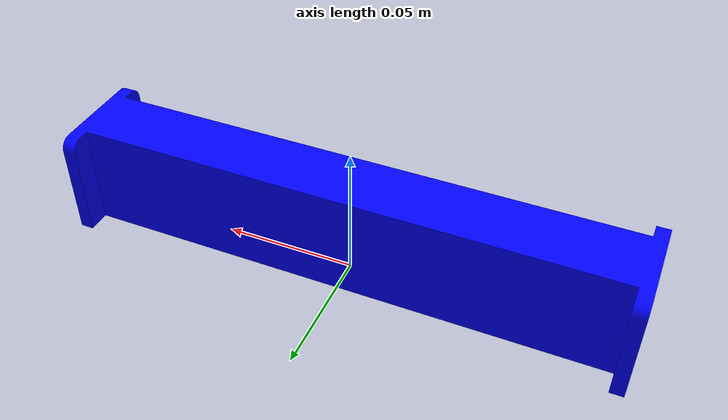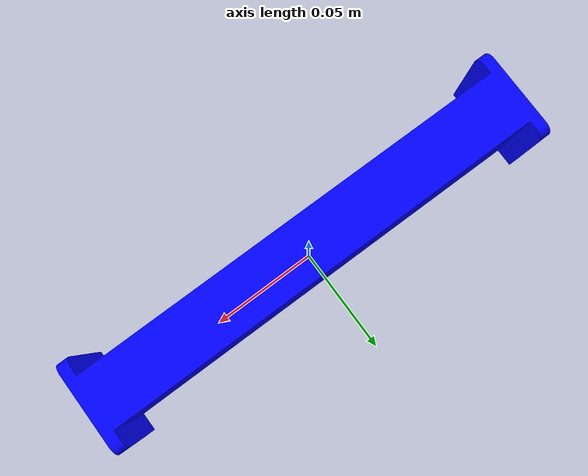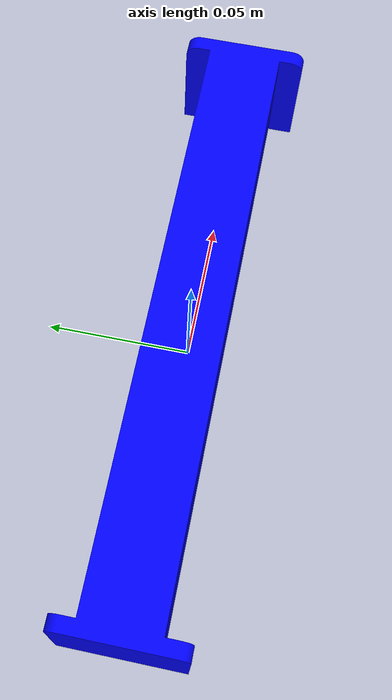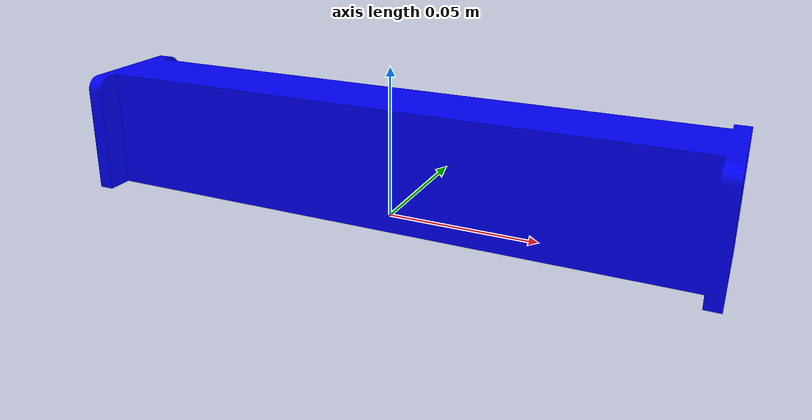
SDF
<?xml version='1.0' encoding='utf-8'?>
<sdf version="1.7">
    <model name="hurdle">
        <link name="Component1">
            <pose>0.0 0.0 0.0 0.0 -0.0 0.0</pose>
            <inertial>
                <mass>1.7337047334147446</mass>
                <pose>2.0983843078782315e-17 2.6229803848477894e-18 0.019992382031315654 0.0 0.0 0.0</pose>
                <inertia>
                    <ixx>0.0003338135371847992</ixx>
                    <iyy>0.006969349134647614</iyy>
                    <izz>0.006841158926371186</izz>
                    <ixy>9.542347051493524e-35</ixy>
                    <iyz>1.8186429784380222e-19</iyz>
                    <ixz>1.4549143827504178e-18</ixz>
                </inertia>
            </inertial>
            <visual name="Component1_visual">
                <geometry>
                    <mesh>
                        <uri>model://hurdle/meshes/Component1.stl</uri>
                        <scale>0.001 0.001 0.001</scale>
                    </mesh>
                </geometry>
                <material>
                    <ambient>0.0 0.0 1.0 1.0</ambient>
                    <diffuse>0.0 0.0 1.0 1.0</diffuse>
                    <specular>0.5 0.5 0.5 1.0</specular>
                    <emissive>0.0 0.0 0.0 1.0</emissive>
                </material>
            </visual>
            <collision name="Component1_collision">
                <geometry>
                    <mesh>
                        <uri>model://hurdle/meshes/Component1.stl</uri>
                        <scale>0.001 0.001 0.001</scale>
                    </mesh>
                </geometry>
            </collision>
        </link>
    </model>
</sdf>
